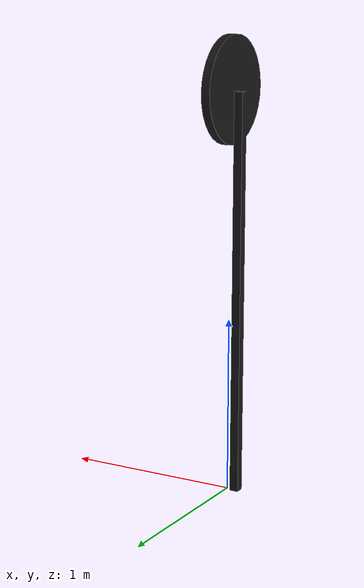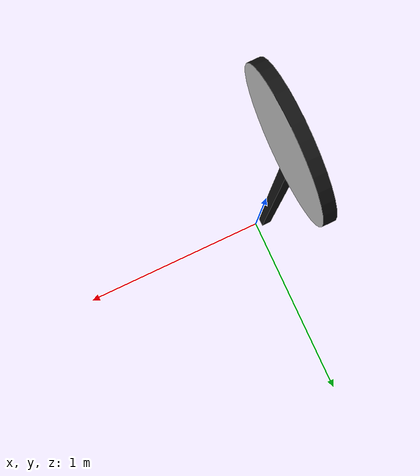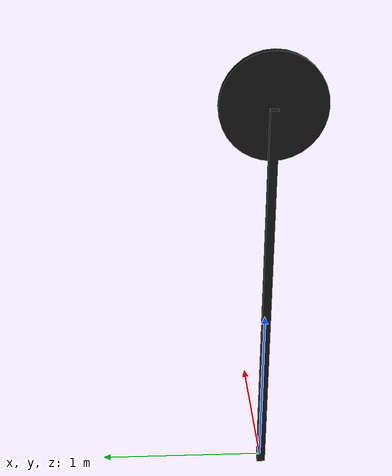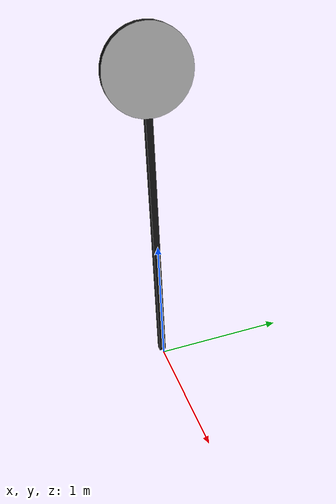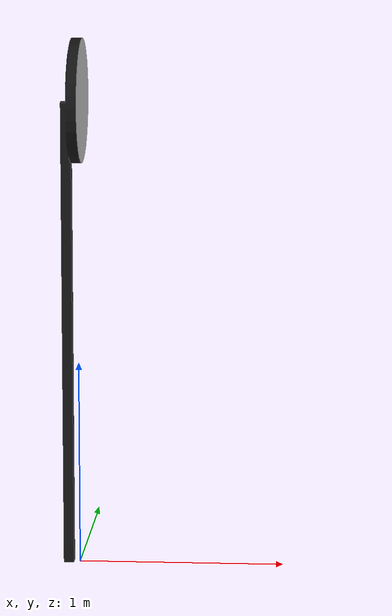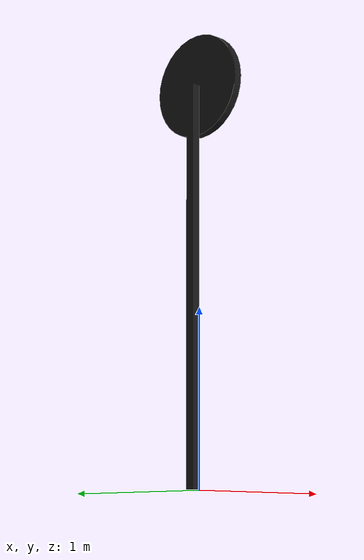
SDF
<?xml version="1.0" ?>
<sdf version="1.5">
  <model name="dur_ve_park_yasak_levha">
    <static>true</static>
    <link name="link">
      <collision name="collision">
        <geometry>
          <mesh>
            <uri>model://dur_ve_park_yasak_levha/meshes/dur_ve_park_yasak_levha.dae</uri>
          </mesh>
        </geometry>
      </collision>
      <visual name="visual">
        <geometry>
          <mesh>
            <uri>model://dur_ve_park_yasak_levha/meshes/dur_ve_park_yasak_levha.dae</uri>
          </mesh>
        </geometry>
      </visual>
    </link>
  </model>
</sdf>
